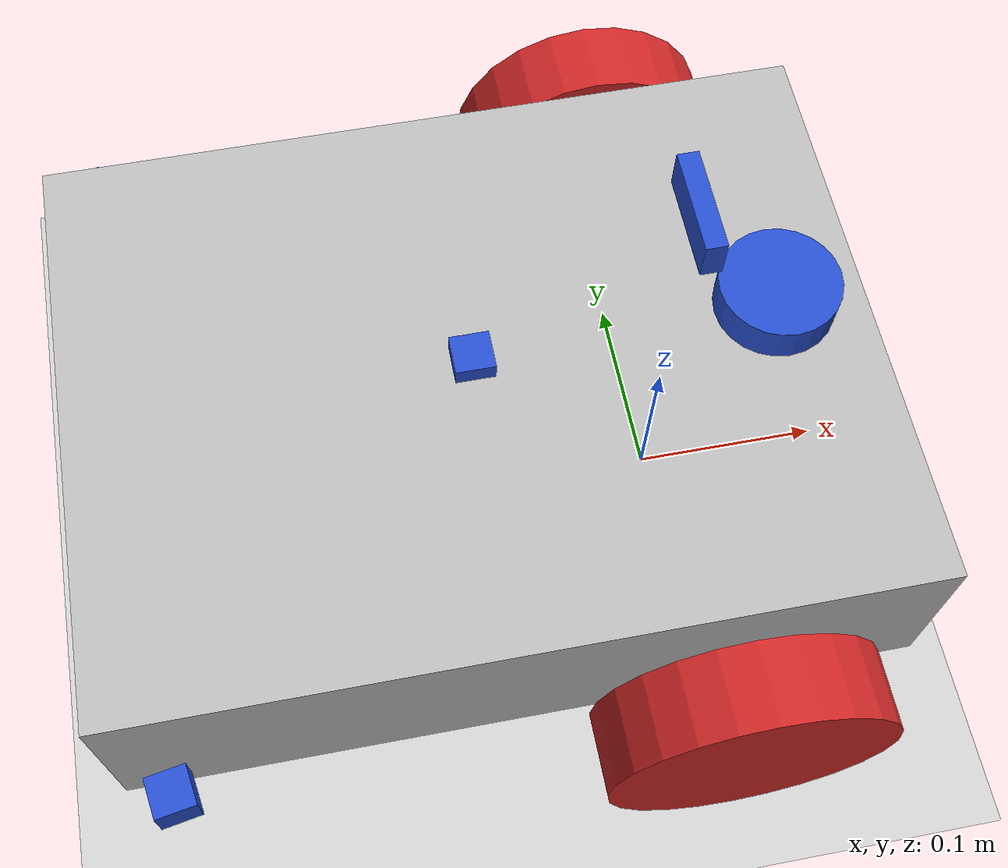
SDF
<sdf version="1.5">
 <world name="default">
  <include><uri>model://sun</uri></include>
  <include><uri>model://ground_plane</uri></include>
  <include><uri>model://wheel_robot_sensor</uri></include>
 </world>
</sdf>

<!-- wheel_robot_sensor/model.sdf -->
<sdf version="1.4">
  <model name="wheel_robot_sensor">
    <link name="body_link">
      <pose>-0.10 0 0.1 0 0 0</pose>
      <inertial>
        <mass>5.0</mass>
        <inertia>
          <ixx>0.042</ixx>
          <ixy>0.0</ixy>
          <ixz>0.0</ixz>
          <iyy>0.071</iyy>
          <iyz>0.0</iyz>
          <izz>0.104</izz>
        </inertia>
      </inertial>
      <collision name="collision">
        <geometry>
          <box>
            <size>0.4 0.3 0.1</size>
          </box>
        </geometry>
      </collision>
      <visual name="visual">
        <geometry>
          <box>
            <size>0.4 0.3 0.1</size>
          </box>
        </geometry>
      </visual>
    </link>

    <joint name='back_ball_joint' type='fixed'>
      <parent>body_link</parent>
      <child>back_ball_link</child>
      <pose>0 0 0 0 0 0</pose>
      <axis>
        <use_parent_model_frame>true</use_parent_model_frame>
        <xyz>-0.23 0 0.05</xyz>
      </axis>
    </joint>
    <link name="back_ball_link">
      <pose>-0.23 0 0.05 0 0 0</pose>
      <inertial>
        <mass>0.1</mass>
        <inertia>
          <ixx>0.0001</ixx>
          <ixy>0.0</ixy>
          <ixz>0.0</ixz>
          <iyy>0.0001</iyy>
          <iyz>0.0</iyz>
          <izz>0.0001</izz>
        </inertia>
      </inertial>
      <collision name="collision">
        <geometry>
          <sphere>
            <radius>0.05</radius>
          </sphere>
        </geometry>
        <surface>
          <friction>
            <ode>
              <mu>0.1</mu>
              <mu2>0.1</mu2>
            </ode>
          </friction>
          <contact>
            <ode>
              <kp>200000</kp>
              <kd>1</kd>
            </ode>
          </contact>
        </surface>
      </collision>
      <visual name="visual">
        <geometry>
          <sphere>
            <radius>0.05</radius>
          </sphere>
        </geometry>
      </visual>
    </link>

    <joint name='left_wheel_joint' type='revolute'>
      <parent>body_link</parent>
      <child>left_wheel_link</child>
      <pose>0 0 0 0 0 0</pose>
      <axis>
        <xyz>0 1 0</xyz>
      </axis>
    </joint>
    <link name="left_wheel_link">
      <pose>0 0.18 0.072 1.5707 0 0</pose>
      <inertial>
        <mass>0.2</mass>
        <inertia>
          <ixx>0.00026</ixx>
          <ixy>0.0</ixy>
          <ixz>0.0</ixz>
          <iyy>0.00026</iyy>
          <iyz>0.0</iyz>
          <izz>0.00052</izz>
        </inertia>
      </inertial>
      <collision name="collision">
        <geometry>
          <cylinder>
            <radius>0.072</radius>
            <length>0.04</length>
          </cylinder>
        </geometry>
        <surface>
          <friction>
            <ode>
              <mu>0.5</mu>
              <mu2>0.5</mu2>
            </ode>
          </friction>
          <contact>
            <ode>
              <kp>100000</kp>
              <kd>1</kd>
            </ode>
          </contact>
        </surface>
      </collision>
      <visual name="visual">
        <geometry>
          <cylinder>
            <radius>0.072</radius>
            <length>0.04</length>
          </cylinder>
        </geometry>
        <material>
          <script>
            <uri>file://media/materials/scripts/gazebo.material</uri>
            <name>Gazebo/Red</name>
          </script>
        </material>
      </visual>
    </link>

    <joint name='right_wheel_joint' type='revolute'>
      <parent>body_link</parent>
      <child>right_wheel_link</child>
      <pose>0 0 0 0 0 0</pose>
      <axis>
        <xyz>0 1 0</xyz>
      </axis>
    </joint>
    <link name="right_wheel_link">
      <pose>0 -0.18 0.072 1.5707 0 0</pose>
      <inertial>
        <mass>0.2</mass>
        <inertia>
          <ixx>0.00026</ixx>
          <ixy>0.0</ixy>
          <ixz>0.0</ixz>
          <iyy>0.00026</iyy>
          <iyz>0.0</iyz>
          <izz>0.00052</izz>
        </inertia>
      </inertial>
      <collision name="collision">
        <geometry>
          <cylinder>
            <radius>0.072</radius>
            <length>0.04</length>
          </cylinder>
        </geometry>
        <surface>
          <friction>
            <ode>
              <mu>0.5</mu>
              <mu2>0.5</mu2>
            </ode>
          </friction>
          <contact>
            <ode>
              <kp>100000</kp>
              <kd>1</kd>
            </ode>
          </contact>
        </surface>
      </collision>
      <visual name="visual">
        <geometry>
          <cylinder>
            <radius>0.072</radius>
            <length>0.04</length>
          </cylinder>
        </geometry>
        <material>
          <script>
            <uri>file://media/materials/scripts/gazebo.material</uri>
            <name>Gazebo/Red</name>
          </script>
        </material>
      </visual>
    </link>

    <plugin name="differential_drive_controller" filename="libgazebo_ros_diff_drive.so">
      <commandTopic>/cmd_vel</commandTopic>
      <odometryTopic>/odom</odometryTopic>
      <odometryFrame>odom</odometryFrame>
      <robotBaseFrame>base_link</robotBaseFrame>
      <publishWheelTF>false</publishWheelTF>
      <publishOdomTF>true</publishOdomTF>
      <publishWheelJointState>false</publishWheelJointState>
      <wheelSeparation>0.36</wheelSeparation>
      <wheelDiameter>0.144</wheelDiameter>
      <wheelAcceleration>30</wheelAcceleration>
      <wheelTorque>5.0</wheelTorque>
      <updateRate>40</updateRate>
      <odometrySource>encoder</odometrySource>
      <leftJoint>left_wheel_joint</leftJoint>
      <rightJoint>right_wheel_joint</rightJoint>
      <publishTf>true</publishTf>
    </plugin>

    <!-- sensors -->

    <joint name='front_laser_joint' type='fixed'>
      <parent>body_link</parent>
      <child>front_laser_link</child>
      <pose>0 0 0 0 0 0</pose>
    </joint>
    <link name="front_laser_link">
      <pose>0.05 0 0.17 0 0 0</pose>
      <inertial>
        <mass>0.1</mass>
        <inertia>
          <ixx>0.00026</ixx>
          <ixy>0.0</ixy>
          <ixz>0.0</ixz>
          <iyy>0.00026</iyy>
          <iyz>0.0</iyz>
          <izz>0.00045</izz>
        </inertia>
      </inertial>
      <collision name="collision">
        <geometry>
          <cylinder>
            <radius>0.03</radius>
            <length>0.02</length>
          </cylinder>
        </geometry>
      </collision>
      <visual name="visual">
        <geometry>
          <cylinder>
            <radius>0.03</radius>
            <length>0.02</length>
          </cylinder>
        </geometry>
        <material>
          <script>
            <uri>file://media/materials/scripts/gazebo.material</uri>
            <name>Gazebo/Blue</name>
          </script>
        </material>
      </visual>
      <sensor type="ray" name="front_laser">
        <always_on>true</always_on>
        <update_rate>10</update_rate>
        <visualize>true</visualize>
        <pose>0 0 0 0 0 0</pose>
        <ray>
          <scan>
            <horizontal>
              <samples>400</samples>
              <resolution>1</resolution>
              <min_angle>-3.1415</min_angle>
              <max_angle>3.1415</max_angle>
            </horizontal>
          </scan>
          <range>
            <min>0.05</min>
            <max>20.0</max>
            <resolution>0.01</resolution>
          </range>
          <noise>
            <type>gaussian</type>
            <mean>0.0</mean>
            <stddev>0.01</stddev>
          </noise>
        </ray>
        <plugin name="gazebo_ros_lidar_controller" filename="libgazebo_ros_laser.so">
          <topicName>/device/front_laser/scan</topicName>
          <frameName>front_laser_link</frameName>
        </plugin>
      </sensor>
    </link>

    <joint name='main_imu_joint' type='fixed'>
      <parent>body_link</parent>
      <child>main_imu_link</child>
      <pose>0 0 0 0 0 0</pose>
    </joint>
    <link name="main_imu_link">
      <pose>-0.10 0 0.15 0 0 0</pose>
      <inertial>
        <mass>0.05</mass>
        <inertia>
          <ixx>0.000033</ixx>
          <ixy>0.0</ixy>
          <ixz>0.0</ixz>
          <iyy>0.000033</iyy>
          <iyz>0.0</iyz>
          <izz>0.000033</izz>
        </inertia>
      </inertial>
      <collision name="collision">
        <geometry>
          <box>
            <size>0.02 0.02 0.02</size>
          </box>
        </geometry>
      </collision>
      <visual name="visual">
        <geometry>
          <box>
            <size>0.02 0.02 0.02</size>
          </box>
        </geometry>
        <material>
          <script>
            <uri>file://media/materials/scripts/gazebo.material</uri>
            <name>Gazebo/Blue</name>
          </script>
        </material>
      </visual>

      <gravity>true</gravity>
      <sensor name="main_imu" type="imu">
        <always_on>true</always_on>
        <update_rate>20</update_rate>
        <visualize>true</visualize>
        <plugin filename="libgazebo_ros_imu_sensor.so" name="imu_plugin">
          <topicName>/main_imu/data</topicName>
          <bodyName>main_imu_link</bodyName>
          <updateRateHZ>10.0</updateRateHZ>
          <gaussianNoise>0.0</gaussianNoise>
          <xyzOffset>0 0 0</xyzOffset>
          <rpyOffset>0 0 0</rpyOffset>
          <frameName>main_imu_link</frameName>
          <initialOrientationAsReference>false</initialOrientationAsReference>
        </plugin>
        <pose>0 0 0 0 0 0</pose>
      </sensor>
    </link>

    <joint name='head_camera_joint' type='fixed'>
      <parent>body_link</parent>
      <child>head_camera_link</child>
      <pose>0 0 0 0 0 0</pose>
    </joint>
    <link name="head_camera_link">
      <pose>0 0 0.25 0 0 0</pose>
      <inertial>
        <mass>0.05</mass>
        <inertia>
          <ixx>0.00012</ixx>
          <ixy>0.0</ixy>
          <ixz>0.0</ixz>
          <iyy>0.000021</iyy>
          <iyz>0.0</iyz>
          <izz>0.00011</izz>
        </inertia>
      </inertial>
      <collision name="collision">
        <geometry>
          <box>
            <size>0.01 0.05 0.02</size>
          </box>
        </geometry>
      </collision>
      <visual name="visual">
        <geometry>
          <box>
            <size>0.01 0.05 0.02</size>
          </box>
        </geometry>
        <material>
          <script>
            <uri>file://media/materials/scripts/gazebo.material</uri>
            <name>Gazebo/Blue</name>
          </script>
        </material>
      </visual>

      <sensor type="camera" name="head_camera">
        <always_on>true</always_on>
        <update_rate>20</update_rate>
        <visualize>true</visualize>
        <camera name="head_camera">
          <horizontal_fov>1.2</horizontal_fov>
          <image>
            <format>R8G8B8</format>
            <width>800</width>
            <height>600</height>
          </image>
          <clip>
            <near>0.02</near>
            <far>300</far>
          </clip>
          <noise>
            <type>gaussian</type>
            <mean>0.0</mean>
            <stddev>0.007</stddev>
          </noise>
          <distortion>
            <k1>-0.25</k1>
            <k2>0.12</k2>
            <k3>0.0</k3>
            <p1>0.0</p1>
            <p2>0.0</p2>
            <center>0.5 0.5</center>
          </distortion>
        </camera>
        <plugin name="camera_controller" filename="libgazebo_ros_camera.so">
          <imageTopicName>/head_camera/image_raw</imageTopicName>
          <cameraInfoTopicName>/head_camera/camera_info</cameraInfoTopicName>
          <cameraName>camera1</cameraName>
          <frameName>head_camera_link</frameName>
          <updateRate>10.0</updateRate>
          <CxPrime>0.0</CxPrime>
          <Cx>0.0</Cx>
          <Cy>0.0</Cy>
          <focalLength>0.0</focalLength> <!-- use computed_focal_length -->
          <hackBaseline>0.12</hackBaseline> <!-- use for P[3] -->
          <distortionK1>0.05</distortionK1>
          <distortionK2>-0.05</distortionK2>
          <distortionK3>0.0</distortionK3>
          <distortionT1>0.0</distortionT1>
          <distortionT2>0.0</distortionT2>
        </plugin>
      </sensor>

      <sensor name="depth_camera" type="depth">
        <always_on>true</always_on>
        <update_rate>20</update_rate>
        <visualize>false</visualize>
        <camera>
          <horizontal_fov>1.2</horizontal_fov>
          <image>
            <format>R8G8B8</format>
            <width>80</width>
            <height>60</height>
          </image>
          <clip>
            <near>0.02</near>
            <far>300</far>
          </clip>
        </camera>
        <plugin filename="libgazebo_ros_depth_camera.so" name="depth_camera_controller">
          <imageTopicName>/depth_camera/color/image_raw</imageTopicName>
          <cameraInfoTopicName>/depth_camera/color/camera_info</cameraInfoTopicName>
          <pointCloudTopicName>/depth_camera/point</pointCloudTopicName>
          <depthImageTopicName>/depth_camera/depth/image_raw</depthImageTopicName>
          <depthImageCameraInfoTopicName>/depth_camera/depth/camera_info</depthImageCameraInfoTopicName>
          <pointCloudCutoff>0.4</pointCloudCutoff>
          <cameraName>camera2</cameraName>
          <frameName>depth_camera_link</frameName>
          <updateRate>10.0</updateRate>
          <CxPrime>0.0</CxPrime>
          <Cx>0.0</Cx>
          <Cy>0.0</Cy>
          <focalLength>0.0</focalLength> <!-- use computed_focal_length -->
          <hackBaseline>0.12</hackBaseline> <!-- use for P[3] -->
          <distortionK1>0.05</distortionK1>
          <distortionK2>-0.05</distortionK2>
          <distortionK3>0.0</distortionK3>
          <distortionT1>0.0</distortionT1>
          <distortionT2>0.0</distortionT2>
        </plugin>
      </sensor>
    </link>

    <joint name='left_back_sonar_joint' type='fixed'>
      <parent>body_link</parent>
      <child>left_back_sonar_link</child>
      <pose>0 0 0 0 0 0</pose>
    </joint>
    <link name="left_back_sonar_link">
      <pose>-0.27 0.17 0.1 0 0 2.97</pose>
      <inertial>
        <mass>0.05</mass>
        <inertia>
          <ixx>0.0000033</ixx>
          <ixy>0.0</ixy>
          <ixz>0.0</ixz>
          <iyy>0.0000033</iyy>
          <iyz>0.0</iyz>
          <izz>0.0000033</izz>
        </inertia>
      </inertial>
      <collision name="collision">
        <geometry>
          <box>
            <size>0.02 0.02 0.02</size>
          </box>
        </geometry>
      </collision>
      <visual name="visual">
        <geometry>
          <box>
            <size>0.02 0.02 0.02</size>
          </box>
        </geometry>
        <material>
          <script>
            <uri>file://media/materials/scripts/gazebo.material</uri>
            <name>Gazebo/Blue</name>
          </script>
        </material>
      </visual>
      <sensor type="ray" name="sonar1">
        <always_on>true</always_on>
        <pose>0 0 0 0 0 0</pose>
        <visualize>true</visualize>
        <update_rate>10</update_rate>
        <ray>
          <scan>
            <horizontal>
              <samples>3</samples>
              <resolution>1</resolution>
              <min_angle>-0.05</min_angle>
              <max_angle>0.05</max_angle>
            </horizontal>
            <vertical>
              <samples>3</samples>
              <resolution>1</resolution>
              <min_angle>-0.02</min_angle>
              <max_angle>0.02</max_angle>
            </vertical>
         </scan>
          <range>
            <min>0.2</min>
            <max>4</max>
            <resolution>0.02</resolution>
          </range>
        </ray>
        <plugin filename="libgazebo_ros_range.so" name="gazebo_ros_range">
          <robotNamespace></robotNamespace>
          <frameName>left_back_sonar_link</frameName>
          <topicName>left_back_sonar/range</topicName>
          <radiation>ultrasound</radiation>
          <fov>0.1</fov>
          <gaussianNoise>0.005</gaussianNoise>
          <updateRate>10</updateRate>
        </plugin>
      </sensor>
    </link>

    <joint name='right_back_sonar_joint' type='fixed'>
      <parent>body_link</parent>
      <child>right_back_sonar_link</child>
      <pose>0 0 0 0 0 0</pose>
    </joint>
    <link name="right_back_sonar_link">
      <pose>-0.27 -0.17 0.1 0 0 -2.97</pose>
      <inertial>
        <mass>0.05</mass>
        <inertia>
          <ixx>0.0000033</ixx>
          <ixy>0.0</ixy>
          <ixz>0.0</ixz>
          <iyy>0.0000033</iyy>
          <iyz>0.0</iyz>
          <izz>0.0000033</izz>
        </inertia>
      </inertial>
      <collision name="collision">
        <geometry>
          <box>
            <size>0.02 0.02 0.02</size>
          </box>
        </geometry>
      </collision>
      <visual name="visual">
        <geometry>
          <box>
            <size>0.02 0.02 0.02</size>
          </box>
        </geometry>
        <material>
          <script>
            <uri>file://media/materials/scripts/gazebo.material</uri>
            <name>Gazebo/Blue</name>
          </script>
        </material>
      </visual>
      <sensor type="ray" name="sonar2">
        <always_on>true</always_on>
        <pose>0 0 0 0 0 0</pose>
        <visualize>true</visualize>
        <update_rate>10</update_rate>
        <ray>
          <scan>
            <horizontal>
              <samples>3</samples>
              <resolution>1</resolution>
              <min_angle>-0.05</min_angle>
              <max_angle>0.05</max_angle>
            </horizontal>
            <vertical>
              <samples>3</samples>
              <resolution>1</resolution>
              <min_angle>-0.02</min_angle>
              <max_angle>0.02</max_angle>
            </vertical>
         </scan>
          <range>
            <min>0.2</min>
            <max>4</max>
            <resolution>0.02</resolution>
          </range>
        </ray>
        <plugin filename="libgazebo_ros_range.so" name="gazebo_ros_range">
          <robotNamespace></robotNamespace>
          <frameName>right_back_sonar_link</frameName>
          <topicName>right_back_sonar/range</topicName>
          <radiation>ultrasound</radiation>
          <fov>0.1</fov>
          <gaussianNoise>0.005</gaussianNoise>
          <updateRate>10</updateRate>
        </plugin>
      </sensor>
    </link>
  </model>
</sdf>
